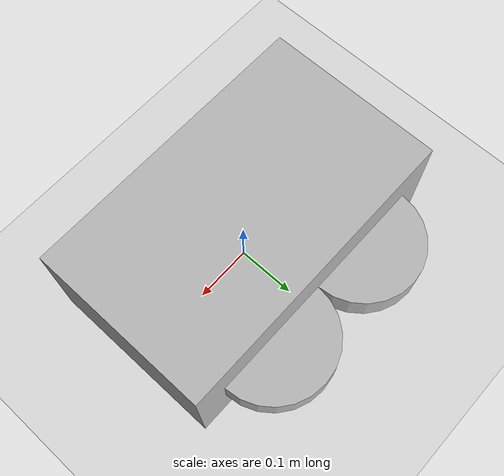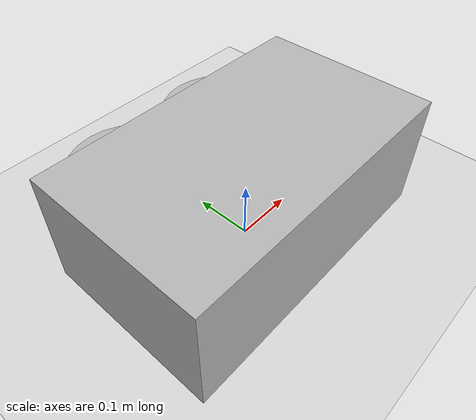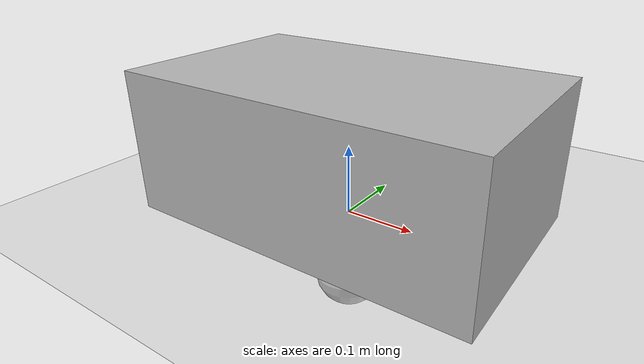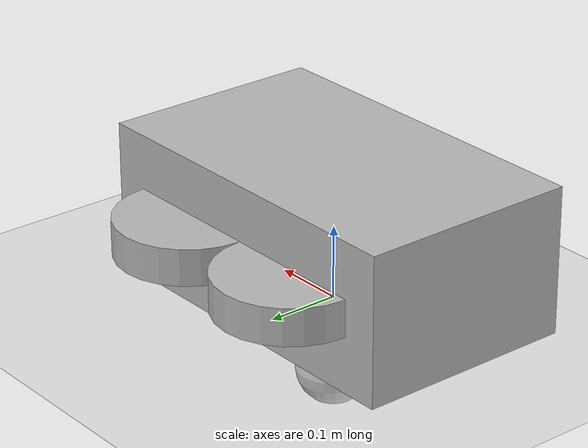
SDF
<?xml version="1.0"?>
<sdf version="1.6">
  <world name="default">
    <!-- Um chão simples -->
    <include>
      <uri>model://ground_plane</uri>
    </include>
    <!-- Uma luz solar -->
    <include>
      <uri>model://sun</uri>
    </include>

    <!-- Incluindo o robô -->
    <include>
      <uri>model://two_wheeled_robot</uri>
      <pose>0 0 0.1 0 0 0</pose>
    </include>

  </world>
</sdf>

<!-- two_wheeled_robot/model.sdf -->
<sdf version='1.7'>
  <model name='two_wheeled_robot'>
    <!-- Base do robô -->
    <include>
      <uri>model://base_link</uri>
    </include>

    <!-- Roda esquerda -->
    <include>
      <uri>model://left_wheel</uri>
      <pose>0.1 0.15 0 0 0 0</pose>
    </include>
    <joint name="left_wheel_joint" type="revolute">
      <parent>base_link::link</parent>
      <child>left_wheel::link</child>
      <axis>
        <xyz>0 1 0</xyz>
        <limit>
          <lower>-1e16</lower>
          <upper>1e16</upper>
        </limit>
      </axis>
    </joint>

    <!-- Roda direita -->
    <include>
      <uri>model://right_wheel</uri>
      <pose>-0.1 0.15 0 0 0 0</pose>
    </include>
    <joint name="right_wheel_joint" type="revolute">
      <parent>base_link::link</parent>
      <child>right_wheel::link</child>
      <axis>
        <xyz>0 1 0</xyz>
        <limit>
          <lower>-1e16</lower>
          <upper>1e16</upper>
        </limit>
      </axis>
    </joint>

    <!-- Roda de caster -->
    <include>
      <uri>model://caster_wheel</uri>
      <pose>0 0 -0.2 0 0 0</pose>
    </include>
    <!-- Junção da roda de caster -->
    <joint name='caster_joint' type='fixed'>
      <parent>base_link</parent>
      <child>caster</child>
    </joint>

    <!-- Plugin para controle -->
    <plugin filename="libignition-gazebo-diff-drive-system.so"
      name="ignition::gazebo::systems::DiffDrive">
      <left_joint>left_wheel_joint</left_joint>
      <right_joint>right_wheel_joint</right_joint>
      <wheel_separation>0.5</wheel_separation>
      <wheel_radius>0.2</wheel_radius>
      <odom_publish_frequency>1</odom_publish_frequency>
      <topic>/cmd_vel</topic>
    </plugin>
    <!-- Adicione sensores como câmera e lidar aqui, se necessário -->
  </model>
</sdf>

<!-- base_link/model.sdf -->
<sdf version="1.6">
  <!-- Base do robô -->
  <model name="base_link">
    <link name="link">
      <visual name="visual">
        <geometry>
          <box>
            <size>0.5 0.3 0.2</size>
          </box>
        </geometry>
      </visual>
      <inertial>
        <mass>2.0</mass>
        <inertia>
          <ixx>0.005</ixx>
          <ixy>0</ixy>
          <ixz>0</ixz>
          <iyy>0.005</iyy>
          <iyz>0</iyz>
          <izz>0.01</izz>
        </inertia>
      </inertial>
    </link>
  </model>
</sdf>

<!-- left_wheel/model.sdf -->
<sdf version="1.6">
  <model name="left_wheel">
    <link name="link">
      <visual name="visual">
        <geometry>
          <cylinder>
            <radius>0.1</radius>
            <length>0.05</length>
          </cylinder>
        </geometry>
      </visual>
    </link>
  </model>
</sdf>

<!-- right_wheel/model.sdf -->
<sdf version="1.6">
  <model name="right_wheel">
    <link name="link">
      <visual name="visual">
        <geometry>
          <cylinder>
            <radius>0.1</radius>
            <length>0.05</length>
          </cylinder>
        </geometry>
      </visual>
    </link>
  </model>
</sdf>

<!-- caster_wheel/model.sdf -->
<sdf version='1.7'>
  <model name='caster_wheel'>
    <link name='link'>
      <inertial>
        <mass>0.5</mass>
        <inertia>
          <ixx>0.001</ixx>
          <ixy>0</ixy>
          <ixz>0</ixz>
          <iyy>0.001</iyy>
          <iyz>0</iyz>
          <izz>0.001</izz>
        </inertia>
      </inertial>
      <collision name='collision'>
        <geometry>
          <sphere>
            <radius>0.05</radius>
          </sphere>
        </geometry>
      </collision>
      <visual name='visual'>
        <geometry>
          <sphere>
            <radius>0.05</radius>
          </sphere>
        </geometry>
      </visual>
    </link>
  </model>
</sdf>
